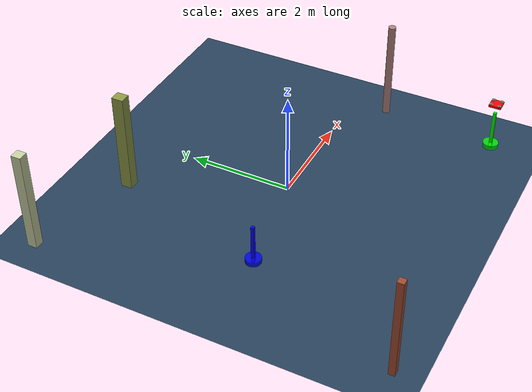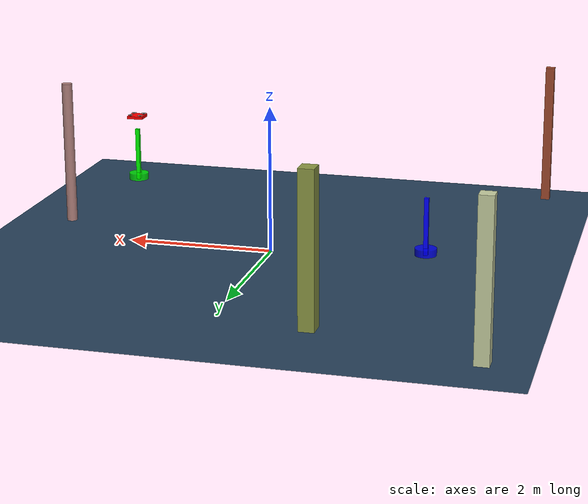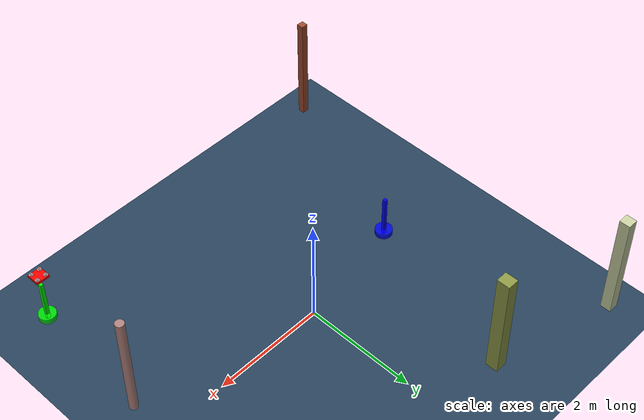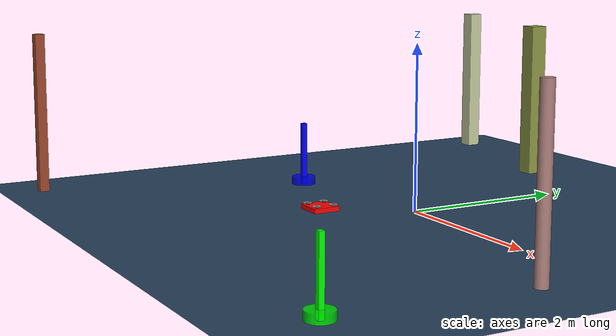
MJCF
<mujoco model="complex_uav_env">
  <compiler angle="degree" coordinate="local" inertiafromgeom="true"/>
  <option integrator="RK4" timestep="0.01"/>

  <visual>
    <headlight diffuse="0.6 0.6 0.6" ambient="0.3 0.3 0.3"/>
    <rgba haze="0.15 0.25 0.35 1"/>
    <global offwidth="2560" offheight="1440"/>
  </visual>

  <asset>
    <texture type="skybox" builtin="gradient" rgb1="0.3 0.5 0.7" rgb2="0 0 0" width="512" height="3072"/>
    <texture name="grid" type="2d" builtin="checker" rgb1="0.1 0.2 0.3" rgb2="0.2 0.3 0.4" width="512" height="512"/>
    <material name="grid" texture="grid" texrepeat="1 1" reflectance="0.2"/>
  </asset>

  <worldbody>
    <!-- Ground plane -->
    <geom name="ground" type="plane" size="4.0 4.0 0.1" material="grid"/>
    <light name="light1" pos="0 0 4" dir="0 0 -1" diffuse="1 1 1"/>

    <!-- Start position marker (green) -->
    <geom name="start_marker" type="cylinder" size="0.15 0.05" pos="3.0 -3.0 0.05" rgba="0 1 0 0.8"/>
    <geom name="start_pole" type="box" size="0.03 0.03 0.4" pos="3.0 -3.0 0.4" rgba="0 1 0 1"/>

    <!-- Goal position marker (blue) -->
    <geom name="goal_marker" type="cylinder" size="0.15 0.05" pos="-2.0598494281356103 -0.3692573110364572 0.05" rgba="0 0 1 0.8"/>
    <geom name="goal_pole" type="box" size="0.03 0.03 0.4" pos="-2.0598494281356103 -0.3692573110364572 0.4" rgba="0 0 1 1"/>

    <!-- UAV starting position -->
    <body name="chassis" pos="3.0 -3.0 1.0">
      <joint type="free" name="root"/>
      <geom type="box" size="0.12 0.12 0.02" rgba="1.0 0.0 0.0 1.0" mass="0.8"/>

      <!-- Propeller arms and motors -->
      <geom type="box" size="0.08 0.01 0.005" pos="0 0 0.01" rgba="0.3 0.3 0.3 1"/>
      <geom type="box" size="0.01 0.08 0.005" pos="0 0 0.01" rgba="0.3 0.3 0.3 1"/>

      <!-- Motor visual geometry -->
      <geom type="cylinder" size="0.015 0.02" pos="0.08 0.08 0.015" rgba="0.2 0.2 0.2 1"/>
      <geom type="cylinder" size="0.015 0.02" pos="-0.08 0.08 0.015" rgba="0.2 0.2 0.2 1"/>
      <geom type="cylinder" size="0.015 0.02" pos="0.08 -0.08 0.015" rgba="0.2 0.2 0.2 1"/>
      <geom type="cylinder" size="0.015 0.02" pos="-0.08 -0.08 0.015" rgba="0.2 0.2 0.2 1"/>

      <!-- Propellers -->
      <geom type="cylinder" size="0.04 0.002" pos="0.08 0.08 0.035" rgba="0.7 0.7 0.7 0.8"/>
      <geom type="cylinder" size="0.04 0.002" pos="-0.08 0.08 0.035" rgba="0.7 0.7 0.7 0.8"/>
      <geom type="cylinder" size="0.04 0.002" pos="0.08 -0.08 0.035" rgba="0.7 0.7 0.7 0.8"/>
      <geom type="cylinder" size="0.04 0.002" pos="-0.08 -0.08 0.035" rgba="0.7 0.7 0.7 0.8"/>

      <!-- Sites for motor force application -->
      <site name="motor1" pos="0.08 0.08 0" size="0.01"/>
      <site name="motor2" pos="-0.08 0.08 0" size="0.01"/>
      <site name="motor3" pos="0.08 -0.08 0" size="0.01"/>
      <site name="motor4" pos="-0.08 -0.08 0" size="0.01"/>
    </body>
    <geom name="test_obs_0" type="box" size="0.06201266086388019 0.060000485217878916 1.0" pos="-3.2972834630779166 -3.487088359274885 1.0" rgba="0.6190602359734159 0.2856673345508044 0.18021140466523697 1.0"/>
    <geom name="test_obs_1" type="box" size="0.10211031371161224 0.11353285495997986 1.0" pos="-1.2323741414315654 2.7264953093823987 1.0" rgba="0.5492236306118391 0.5967223219363441 0.27035267696940213 1.0"/>
    <geom name="test_obs_2" type="cylinder" size="0.07431813782834823 1.0" pos="3.1714709113259505 -0.7023129746720691 1.0" rgba="0.6809311396123405 0.5009505950423297 0.481205012904414 1.0"/>
    <geom name="test_obs_3" type="box" size="0.0914483136630893 0.09350095437729519 1.0" pos="-3.402525034890279 3.2978979573777427 1.0" rgba="0.7752166420696145 0.8069116237175885 0.6256032599643667 1.0"/>
  </worldbody>

  <actuator>
    <motor name="m1" gear="0 0 1 0 0 0" site="motor1"/>
    <motor name="m2" gear="0 0 1 0 0 0" site="motor2"/>
    <motor name="m3" gear="0 0 1 0 0 0" site="motor3"/>
    <motor name="m4" gear="0 0 1 0 0 0" site="motor4"/>
  </actuator>
</mujoco>
